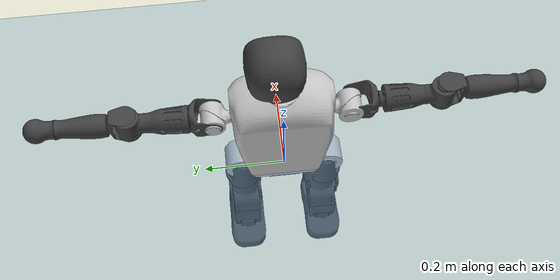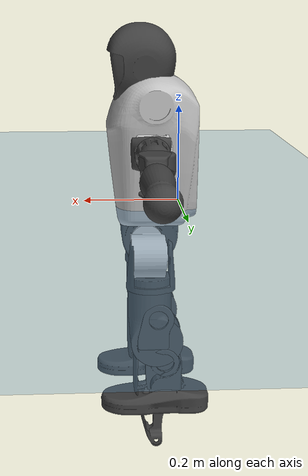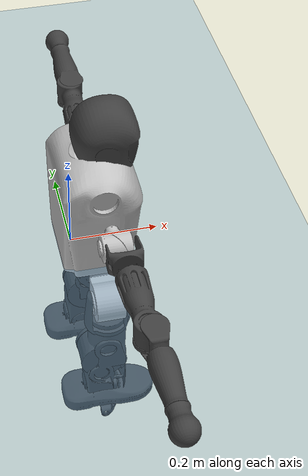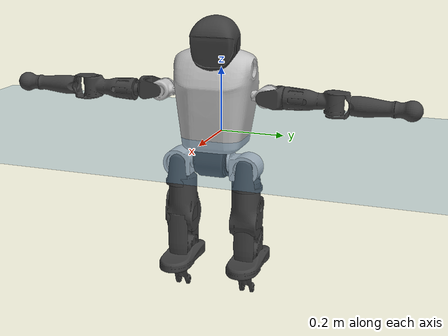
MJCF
<mujoco model="T1">
  <compiler angle="radian" assetdir="assets" balanceinertia="true" inertiafromgeom="false"/>

  <option timestep="0.005" density="1.2" viscosity="2e-05"/>

  <size nkey="1"/>

  <visual>
    <quality shadowsize="8192"/>
    <map shadowclip="0.5"/>
  </visual>

  <default>
    <default class="/">
      <joint armature="0.01" damping="0.01" frictionloss="0.1"/>
      <geom contype="0" conaffinity="0" group="1" solref="-1000 -80"/>
      <site size="0.01 0.005 0.005" group="5"/>
      <general forcelimited="true" biastype="affine" gainprm="25" biasprm="0 -25 -0.6"/>
      <default class="t1">
        <geom rgba="0.25 0.25 0.25 1"/>
        <default class="visual">
          <geom type="mesh" group="2"/>
        </default>
        <default class="collision">
          <geom group="3"/>
        </default>
        <default class="foot">
          <geom size="0.1115 0.05 0.015" type="box" condim="6" group="4" priority="1" solimp="0.015 1 0.015"/>
        </default>
        <default class="reward_collision_sphere">
          <geom group="5" rgba="1 0 0 1"/>
        </default>
      </default>
    </default>
  </default>

  <asset>
    <texture type="skybox" colorspace="auto" name="//unnamed_texture_0" builtin="gradient" rgb1="0.95 0.95 0.95" rgb2="0.95 0.95 0.95" width="100" height="600"/>
    <texture type="2d" colorspace="auto" name="texplane" builtin="checker" rgb1="0.345 0.575 0.748" rgb2="0.345 0.575 0.748" markrgb="1 1 1" width="512" height="512"/>
    <material name="MatPlane" class="/" texture="texplane" texuniform="true" texrepeat="2 2" specular="0.9"/>
    <mesh name="Trunk" class="/" file="Trunk.stl"/>
    <mesh name="H1" class="/" file="H1.stl"/>
    <mesh name="H2" class="/" file="H2.stl"/>
    <mesh name="AL1" class="/" file="AL1.stl"/>
    <mesh name="AL2" class="/" file="AL2.stl"/>
    <mesh name="AL3" class="/" file="AL3.stl"/>
    <mesh name="left_hand_link" class="/" file="left_hand_link.stl"/>
    <mesh name="AR1" class="/" file="AR1.stl"/>
    <mesh name="AR2" class="/" file="AR2.stl"/>
    <mesh name="AR3" class="/" file="AR3.stl"/>
    <mesh name="right_hand_link" class="/" file="right_hand_link.stl"/>
    <mesh name="Waist" class="/" file="Waist.stl"/>
    <mesh name="Hip_Pitch_Left" class="/" file="Hip_Pitch_Left.stl"/>
    <mesh name="Hip_Roll_Left" class="/" file="Hip_Roll_Left.stl"/>
    <mesh name="Hip_Yaw_Left" class="/" file="Hip_Yaw_Left.stl"/>
    <mesh name="Shank_Left" class="/" file="Shank_Left.stl"/>
    <mesh name="Ankle_Cross_Left" class="/" file="Ankle_Cross_Left.stl"/>
    <mesh name="left_foot_link" class="/" file="left_foot_link.stl"/>
    <mesh name="Hip_Pitch_Right" class="/" file="Hip_Pitch_Right.stl"/>
    <mesh name="Hip_Roll_Right" class="/" file="Hip_Roll_Right.stl"/>
    <mesh name="Hip_Yaw_Right" class="/" file="Hip_Yaw_Right.stl"/>
    <mesh name="Shank_Right" class="/" file="Shank_Right.stl"/>
    <mesh name="Ankle_Cross_Right" class="/" file="Ankle_Cross_Right.stl"/>
    <mesh name="right_foot_link" class="/" file="right_foot_link.stl"/>
  </asset>

  <worldbody>
    <geom name="floor" class="/" size="100 100 0.125" type="plane" group="0" material="MatPlane"/>
    <light name="toplight_shadow" class="/" pos="0 0 5" dir="0.0990148 0.0990148 -0.990148" type="directional" ambient="0.04 0.04 0.04" diffuse="0.55 0.55 0.55" specular="0.12 0.12 0.12"/>
    <light name="toplight_fill" class="/" pos="0 0 5" dir="0.0990148 0.0990148 -0.990148" type="directional" castshadow="false" ambient="0.04 0.04 0.04" diffuse="0.3 0.3 0.3" specular="0.08 0.08 0.08"/>
    <body name="trunk" childclass="t1" pos="-0.0020353 -0.000215812 -0.00617217" quat="1 0.000228721 -6.26506e-05 -0.000871582">
      <inertial pos="0.0601599 -0.00352632 0.0658037" quat="0.99991 0.0120225 -0.00588842 0.00116151" mass="10.2884" diaginertia="0.146464 0.122281 0.00578262"/>
      <joint name="//unnamed_joint_0" type="free" armature="0" damping="0" frictionloss="0"/>
      <geom name="//unnamed_geom_1" class="visual" rgba="0.76 0.76 0.76 1" mesh="Trunk"/>
      <geom name="//unnamed_geom_2" class="collision" size="0.0700105 0.0933473 0.140021" pos="0.0651862 0 0.0747546" type="box"/>
      <geom name="//unnamed_geom_3" class="reward_collision_sphere" size="0.107349" pos="0.0651862 0 0.0622955"/>
      <geom name="//unnamed_geom_4" class="reward_collision_sphere" size="0.0140021" pos="0.0651862 0.0927373 0"/>
      <geom name="//unnamed_geom_5" class="reward_collision_sphere" size="0.0140021" pos="0.0651862 -0.0927373 0"/>
      <geom name="//unnamed_geom_6" class="reward_collision_sphere" size="0.0140021" pos="0.0651862 0.11674 0.112132"/>
      <geom name="//unnamed_geom_7" class="reward_collision_sphere" size="0.0140021" pos="0.0651862 -0.11674 0.112132"/>
      <site name="imu" pos="-0.0481733 0.0378348 -0.0079248" size="0.00933473"/>
      <camera name="track" pos="0 -2.18205 0" quat="0.707107 0.707107 0 0" mode="trackcom"/>
      <camera name="ego_camera" pos="0.132545 0 0.261641" quat="-0.5 -0.5 0.5 0.5"/>
      <body name="H1" pos="0.0688585 0.00331675 0.148411" quat="0.999999 0.000603076 0.000420376 0.00142014">
        <inertial pos="-0.00214421 -0.00287741 0.0349067" quat="0.764197 -0.0133992 0.00247609 0.644839" mass="0.345742" diaginertia="0.000335499 0.000340492 1.26496e-05"/>
        <joint name="AAHead_yaw" pos="0 0 0" axis="0.00637452 -0.000129036 0.99998" range="-1.59995 1.49292" armature="0.0093969" damping="0.00550314" frictionloss="0.09288"/>
        <geom name="//unnamed_geom_8" class="visual" mesh="H1"/>
        <body name="H2" pos="0.000284039 0.00817569 0.038048" quat="1 0.000787137 -0.000194832 -0.000163138">
          <inertial pos="-0.00161932 -0.00736428 0.0569855" quat="0.988936 0.104299 -0.073866 -0.075303" mass="0.463522" diaginertia="0.0031146 0.00306778 0.000162708"/>
          <joint name="Head_pitch" pos="0 0 0" axis="-0.000824906 -0.999999 -0.00145513" range="-1.21542 0.260606" armature="0.0128181" damping="0.0188195" frictionloss="0.0904856"/>
          <geom name="//unnamed_geom_9" class="visual" mesh="H2"/>
          <geom name="//unnamed_geom_10" class="collision" size="0.0746778" pos="0.0108644 0 0.068525"/>
          <geom name="//unnamed_geom_11" class="reward_collision_sphere" size="0.0840126" pos="0.0217287 0 0.0622955"/>
        </body>
      </body>
      <body name="AL1" pos="0.068728 0.120164 0.139941" quat="1 -0.0001627 -0.000280681 -0.000695276">
        <inertial pos="-0.00280543 0.0466408 -0.00836378" quat="0.498656 0.497032 -0.515008 0.488947" mass="0.435943" diaginertia="0.00207542 0.00202085 2.7368e-05"/>
        <joint name="Left_Shoulder_Pitch" pos="0 0 0" axis="-0.00160642 0.999996 0.00212031" stiffness="0.0343827" range="-3.15173 1.30942" armature="0.00984474" damping="0.0078913" frictionloss="0.0930543"/>
        <geom name="//unnamed_geom_12" class="visual" rgba="0.76 0.76 0.76 1" mesh="AL1"/>
        <body name="AL2" pos="0.00388072 0.043468 0.000330106" quat="0.999988 -0.00371934 -0.00174501 -0.00256616">
          <inertial pos="0.00239102 0.0395475 0.00583322" quat="0.487703 0.50782 -0.49385 0.510271" mass="0.101529" diaginertia="0.000529158 0.000441166 1.46226e-05"/>
          <joint name="Left_Shoulder_Roll" pos="0 0 0" axis="-0.998516 -0.0541917 -0.00534303" stiffness="0.0131431" range="-1.49386 1.77545" armature="0.00813014" damping="0.0496847" frictionloss="0.098075"/>
          <geom name="//unnamed_geom_13" class="visual" mesh="AL2"/>
          <body name="AL3" pos="-0.000935051 0.0582463 0.000362717" quat="0.999987 -0.00279059 0.00228284 -0.00364608">
            <inertial pos="0.00200564 0.0951791 0.000580322" quat="0.714305 0.699149 -0.0274326 -0.0143718" mass="0.739535" diaginertia="0.0170074 0.0181712 5.38142e-05"/>
            <joint name="Left_Elbow_Pitch" pos="0 0 0" axis="0.000534715 -0.999941 0.0108929" range="-2.22941 2.29727" armature="0.0101673" damping="0.00439816" frictionloss="0.101034"/>
            <geom name="//unnamed_geom_14" class="visual" mesh="AL3"/>
            <geom name="//unnamed_geom_15" class="collision" size="0.0280042 0.0700105" pos="0 0.0545514 0" quat="0.707105 0.707108 0 0" type="cylinder"/>
            <geom name="//unnamed_geom_16" class="reward_collision_sphere" size="0.033605"/>
            <body name="left_hand_link" pos="0.00503467 0.151258 -0.00410511" quat="0.999991 0.00326334 0.00155865 -0.00221771">
              <inertial pos="-0.00131372 0.12155 0.00832817" quat="0.682572 0.730646 0.0122197 0.0101558" mass="0.301271" diaginertia="0.0134444 0.0145105 2.34452e-05"/>
              <joint name="Left_Elbow_Yaw" pos="0 0 0" axis="-0.0343027 0.00520288 0.999398" range="-2.43165 -0.1222" armature="0.00871539" damping="0.0261783" frictionloss="0.0484266"/>
              <geom name="//unnamed_geom_17" class="visual" mesh="left_hand_link"/>
              <geom name="//unnamed_geom_18" class="collision" size="0.0280042 0.0816789" pos="0 0.141834 0" quat="0.707105 0.707108 0 0" type="cylinder"/>
              <geom name="//unnamed_geom_19" class="reward_collision_sphere" size="0.0466737"/>
              <geom name="//unnamed_geom_20" class="reward_collision_sphere" size="0.0326716" pos="0 0.120013 0"/>
              <geom name="//unnamed_geom_21" class="reward_collision_sphere" size="0.0326716" pos="0 0.234571 0"/>
            </body>
          </body>
        </body>
      </body>
      <body name="AR1" pos="0.0695555 -0.120929 0.139253" quat="1 -0.000327316 0.000193135 0.000512095">
        <inertial pos="0.00123543 -0.0497679 0.00189914" quat="0.510387 0.490921 -0.498981 0.49952" mass="0.408194" diaginertia="0.00207122 0.00194172 2.61687e-05"/>
        <joint name="Right_Shoulder_Pitch" pos="0 0 0" axis="0.0144628 -0.999891 0.00311761" range="-1.39567 3.27644" armature="0.00842888" damping="0" frictionloss="0.0922264"/>
        <geom name="//unnamed_geom_22" class="visual" rgba="0.76 0.76 0.76 1" mesh="AR1"/>
        <body name="AR2" pos="0.00835261 -0.057033 0.00320785" quat="0.999999 1.03544e-06 0.0013229 -9.06988e-05">
          <inertial pos="0.0075801 -0.0428597 0.005276" quat="0.499328 0.484371 -0.521183 0.494393" mass="0.130372" diaginertia="0.000656322 0.000590352 1.62777e-05"/>
          <joint name="Right_Shoulder_Roll" pos="0 0 0" axis="-0.999978 0.00210024 -0.00636116" range="-1.79526 1.74084" armature="0.010147" damping="0.00623006" frictionloss="0.130945"/>
          <geom name="//unnamed_geom_23" class="visual" mesh="AR2"/>
          <body name="AR3" pos="0.0028853 -0.0754971 -0.00762451" quat="1 -0.000835614 -6.45773e-05 -2.6874e-05">
            <inertial pos="-0.000705492 -0.0930453 0.000849625" quat="0.710343 0.702008 0.0329179 -0.0389149" mass="0.862847" diaginertia="0.0202815 0.0188118 5.82233e-05"/>
            <joint name="Right_Elbow_Pitch" pos="0 0 0" axis="0.00150064 0.999999 -0.000602122" range="-2.28229 2.24124" armature="0.00878038" damping="0" frictionloss="0.0524636"/>
            <geom name="//unnamed_geom_24" class="visual" mesh="AR3"/>
            <geom name="//unnamed_geom_25" class="collision" size="0.0280042 0.0700105" pos="0 -0.0545514 0" quat="0.707105 0.707108 0 0" type="cylinder"/>
            <geom name="//unnamed_geom_26" class="reward_collision_sphere" size="0.033605"/>
            <body name="right_hand_link" pos="0.00752289 -0.16122 -0.000562736" quat="0.999999 0.000296232 -0.00138512 0.000348653">
              <inertial pos="0.00141204 -0.119368 -0.00790224" quat="0.695027 0.71807 -0.0214702 0.0292007" mass="0.301583" diaginertia="0.0145213 0.014313 2.25561e-05"/>
              <joint name="Right_Elbow_Yaw" pos="0 0 0" axis="0.0102012 -0.0059428 0.99993" range="0.122367 2.45345" armature="0.00446329" damping="0.0211198" frictionloss="0.0903219"/>
              <geom name="//unnamed_geom_27" class="visual" mesh="right_hand_link"/>
              <geom name="//unnamed_geom_28" class="collision" size="0.0280042 0.0816789" pos="0 -0.141834 0" quat="0.707105 0.707108 0 0" type="cylinder"/>
              <geom name="//unnamed_geom_29" class="reward_collision_sphere" size="0.0466737"/>
              <geom name="//unnamed_geom_30" class="reward_collision_sphere" size="0.0326716" pos="0 -0.120013 0"/>
              <geom name="//unnamed_geom_31" class="reward_collision_sphere" size="0.0326716" pos="0 -0.234571 0"/>
            </body>
          </body>
        </body>
      </body>
      <body name="Waist" pos="0.0643191 -0.00104161 -0.0659007" quat="1 0.000203386 -0.000344088 0.000229774">
        <inertial pos="-0.00602314 -7.41175e-05 0.0047996" quat="0.984123 0.0042469 -0.177332 -0.00616193" mass="2.13731" diaginertia="0.00877379 0.00978365 0.000487423"/>
        <joint name="Waist" pos="0 0 0" axis="0.00140222 -0.000122276 0.999999" range="-1.76623 1.53398" armature="0.0122848" damping="0.00713596" frictionloss="0.0846663"/>
        <geom name="//unnamed_geom_32" class="visual" mesh="Waist"/>
        <body name="Hip_Pitch_Left" pos="0.00813705 0.108133 -0.0016577" quat="0.99999 0.00429474 -0.000963788 -0.00029099">
          <inertial pos="0.00448483 -0.0174236 -0.0121175" quat="0.975157 0.220937 0.0155342 -0.00391885" mass="0.864681" diaginertia="0.00293605 0.0020714 0.000125375"/>
          <joint name="Left_Hip_Pitch" pos="0 0 0" axis="0.00444243 0.99998 0.00453353" range="-1.81882 1.48289" armature="0.00905467" damping="0" frictionloss="0.094319"/>
          <geom name="//unnamed_geom_33" class="visual" rgba="0.76 0.76 0.76 1" mesh="Hip_Pitch_Left"/>
          <body name="Hip_Roll_Left" pos="-0.00345007 0.000686582 -0.0108833" quat="0.999993 -0.00323524 -0.00157899 -0.00102046">
            <inertial pos="0.00161583 -0.00147867 -0.0334525" quat="0.704519 -0.00078989 -0.0119774 0.709584" mass="0.319207" diaginertia="0.00263058 0.00263092 5.38925e-05"/>
            <joint name="Left_Hip_Roll" pos="0 0 0" axis="-0.999996 -0.00257717 0.00132198" stiffness="0.0174033" range="-1.56447 0.20645" armature="0.00923495" damping="0" frictionloss="0.0643734"/>
            <geom name="//unnamed_geom_34" class="visual" mesh="Hip_Roll_Left"/>
            <geom name="//unnamed_geom_35" class="reward_collision_sphere" size="0.051341"/>
            <body name="Hip_Yaw_Left" pos="-0.00071288 -0.0031228 -0.0499007" quat="0.999998 0.00109292 0.000162957 -0.00177425">
              <inertial pos="-0.0069636 -0.000505057 -0.055669" quat="0.684044 -0.016313 0.00844862 0.729209" mass="1.82365" diaginertia="0.0398302 0.0440667 0.000234884"/>
              <joint name="Left_Hip_Yaw" pos="0 0 0" axis="-0.0220857 -0.0311053 -0.999272" range="-0.989586 1.04062" armature="0.00930721" damping="0" frictionloss="0.0918818"/>
              <geom name="//unnamed_geom_36" class="visual" mesh="Hip_Yaw_Left"/>
              <geom name="//unnamed_geom_37" class="collision" size="0.0466737 0.0746778" type="cylinder"/>
              <body name="Shank_Left" pos="-0.0158526 0.00161206 -0.0832391" quat="0.999999 -0.000935001 4.40808e-05 0.00126806">
                <inertial pos="-0.00794297 -0.000388348 -0.0786477" quat="0.996459 -0.0264005 -0.0309065 0.073598" mass="1.36004" diaginertia="0.053776 0.0497147 0.000174594"/>
                <joint name="Left_Knee_Pitch" pos="0 0 0" axis="-0.0130751 0.999846 -0.0117115" range="-0.0274251 2.34601" armature="0.00910747" damping="0" frictionloss="0.0600846"/>
                <geom name="//unnamed_geom_38" class="visual" mesh="Shank_Left"/>
                <geom name="//unnamed_geom_39" class="collision" size="0.0466737 0.0700105" pos="0 0 -0.0747546" type="cylinder"/>
                <geom name="//unnamed_geom_40" class="reward_collision_sphere" size="0.0606758"/>
                <body name="Ankle_Cross_Left" pos="0.00174531 0.000805583 -0.176237" quat="0.999998 -0.000882194 0.00155771 -0.000887934">
                  <inertial pos="-0.00546759 -0.00282768 0.00489728" quat="0.444652 0.547203 0.554075 0.442553" mass="0.0544411" diaginertia="3.59327e-05 3.78808e-05 1.00282e-06"/>
                  <joint name="Left_Ankle_Pitch" pos="0 0 0" axis="-0.0161266 0.999867 -0.00223491" range="-0.669065 0.275562" armature="0.0108855" damping="0.00243131" frictionloss="0.0583506"/>
                  <geom name="//unnamed_geom_41" class="visual" mesh="Ankle_Cross_Left"/>
                  <body name="left_foot_link" pos="-0.00785594 0.00105239 0.00115331" quat="1 0.000287926 2.7226e-05 0.000393976">
                    <inertial pos="0.000307581 0.00851412 -0.00495617" quat="0.000881904 0.615614 0.00698656 0.788016" mass="0.575789" diaginertia="0.00384377 0.00370756 0.000204258"/>
                    <joint name="Left_Ankle_Roll" pos="0 0 0" axis="-0.999997 0.00165471 -0.00174931" range="-0.357423 0.472435" armature="0.00909031" damping="0.00675953" frictionloss="0.101291"/>
                    <geom name="//unnamed_geom_42" class="visual" mesh="left_foot_link"/>
                    <geom name="left_foot" class="foot" size="0.0983733 0.0374128 0.012712" pos="0.0108644 0 -0.00934432"/>
                    <geom name="//unnamed_geom_44" class="reward_collision_sphere" size="0.0485406" pos="0.0108644 0 -0.00934432"/>
                    <geom name="//unnamed_geom_45" class="reward_collision_sphere" size="0.0280042" pos="0.103212 -0.0250936 -0.00934432"/>
                    <geom name="//unnamed_geom_46" class="reward_collision_sphere" size="0.0280042" pos="-0.0760506 -0.0250936 -0.00934432"/>
                    <site name="left_foot" class="foot" pos="0.0108644 0 -0.00934432" size="0.00933473"/>
                  </body>
                </body>
              </body>
            </body>
          </body>
        </body>
        <body name="Hip_Pitch_Right" pos="0.000638195 -0.114067 -0.00239461" quat="0.999999 0.000946136 0.0012583 0.000573585">
          <inertial pos="0.0016198 0.00784174 -0.0196429" quat="0.971779 -0.233564 0.0112182 0.0311106" mass="0.827772" diaginertia="0.00273776 0.00226679 0.000108203"/>
          <joint name="Right_Hip_Pitch" pos="0 0 0" axis="-0.0188176 -0.999477 0.0262882" stiffness="0.011687" range="-1.59721 1.79527" armature="0.00645721" damping="0.00412853" frictionloss="0.0775331"/>
          <geom name="//unnamed_geom_47" class="visual" rgba="0.76 0.76 0.76 1" mesh="Hip_Pitch_Right"/>
          <body name="Hip_Roll_Right" pos="-0.00240308 0.00291058 -0.0142718" quat="0.999988 -0.00156255 0.00378668 0.00281108">
            <inertial pos="-0.00836275 -0.0009419 -0.0285953" quat="0.72102 -0.0127785 -0.0288936 0.692194" mass="0.3339" diaginertia="0.00299696 0.00251437 5.1492e-05"/>
            <joint name="Right_Hip_Roll" pos="0 0 0" axis="-0.999889 -0.0148907 -0.000939235" range="-0.200267 1.44483" armature="0.0102701" damping="0" frictionloss="0.0920518"/>
            <geom name="//unnamed_geom_48" class="visual" mesh="Hip_Roll_Right"/>
            <geom name="//unnamed_geom_49" class="reward_collision_sphere" size="0.051341"/>
            <body name="Hip_Yaw_Right" pos="0.000722791 0.00585463 -0.0514549" quat="0.999992 0.00233839 -0.00307886 0.00082627">
              <inertial pos="-0.0116109 -0.00103478 -0.0564257" quat="0.724755 -0.0266257 -0.0164098 0.688296" mass="1.56978" diaginertia="0.0317019 0.0308901 0.000212336"/>
              <joint name="Right_Hip_Yaw" pos="0 0 0" axis="0.00370963 0.000303528 -0.999993" range="-1.04547 1.19617" armature="0.00896687" damping="0.00322148" frictionloss="0.131035"/>
              <geom name="//unnamed_geom_50" class="visual" mesh="Hip_Yaw_Right"/>
              <geom name="//unnamed_geom_51" class="collision" size="0.0466737 0.0746778" type="cylinder"/>
              <body name="Shank_Right" pos="-0.00658258 -0.00490405 -0.081783" quat="0.999992 0.00151458 -0.00174957 -0.00319419">
                <inertial pos="-0.0139953 -0.00331241 -0.0780114" quat="0.999097 0.00208202 -0.0189837 -0.0379432" mass="1.25774" diaginertia="0.0534896 0.0580398 0.000194716"/>
                <joint name="Right_Knee_Pitch" pos="0 0 0" axis="0.000199473 -0.99997 0.00768856" range="-2.3374 -0.0271015" armature="0.0104083" damping="0" frictionloss="0.084006"/>
                <geom name="//unnamed_geom_52" class="visual" mesh="Shank_Right"/>
                <geom name="//unnamed_geom_53" class="collision" size="0.0466737 0.0700105" pos="0 0 -0.0747546" type="cylinder"/>
                <geom name="//unnamed_geom_54" class="reward_collision_sphere" size="0.0606758"/>
                <body name="Ankle_Cross_Right" pos="0.00240386 -0.00106858 -0.168947" quat="0.999993 -0.000783493 0.000619439 -0.00363108">
                  <inertial pos="-0.00413671 0.00143713 -0.00600609" quat="0.436954 0.548776 0.553 0.449563" mass="0.0692642" diaginertia="4.6849e-05 4.19591e-05 1.1099e-06"/>
                  <joint name="Right_Ankle_Pitch" pos="0 0 0" axis="0.0296521 -0.998737 -0.0405551" range="-0.367261 0.973451" armature="0.0064306" damping="0.027537" frictionloss="0.139108"/>
                  <geom name="//unnamed_geom_55" class="visual" mesh="Ankle_Cross_Right"/>
                  <body name="right_foot_link" pos="-0.00505023 -0.000841151 -0.00973828" quat="0.999999 0.000998114 -0.00124712 0.000151784">
                    <inertial pos="-0.000252111 0.000601376 0.00153641" quat="0.00327208 0.616985 0.00401728 0.786958" mass="0.499268" diaginertia="0.00424224 0.00369261 0.000207024"/>
                    <joint name="Right_Ankle_Roll" pos="0 0 0" axis="-0.99952 -0.00477287 0.0306065" range="-0.640085 0.388575" armature="0.0122494" damping="0.00982771" frictionloss="0.102095"/>
                    <geom name="//unnamed_geom_56" class="visual" mesh="right_foot_link"/>
                    <geom name="right_foot" class="foot" size="0.138864 0.033776 0.011989" pos="0.0108644 0 -0.00934432"/>
                    <geom name="//unnamed_geom_58" class="reward_collision_sphere" size="0.0373389"/>
                    <geom name="//unnamed_geom_59" class="reward_collision_sphere" size="0.0280042" pos="0.0108644 0 -0.00934432"/>
                    <geom name="//unnamed_geom_60" class="reward_collision_sphere" size="0.0280042" pos="0.103212 0.0250936 -0.00934432"/>
                    <geom name="//unnamed_geom_61" class="reward_collision_sphere" size="0.0280042" pos="-0.0760506 0.0250936 -0.00934432"/>
                    <site name="right_foot" class="foot" pos="0.0108644 0 -0.00934432" size="0.00933473"/>
                  </body>
                </body>
              </body>
            </body>
          </body>
        </body>
      </body>
    </body>
  </worldbody>

  <contact>
    <pair class="/" geom1="floor" geom2="left_foot" name="//unnamed_contact_0"/>
    <pair class="/" geom1="floor" geom2="right_foot" name="//unnamed_contact_1"/>
  </contact>

  <actuator>
    <general name="AAHead_yaw" class="/" joint="AAHead_yaw" forcerange="-7.15293 7.15293" gainprm="19.872" biasprm="0 -19.872 -0.546868"/>
    <general name="Head_pitch" class="/" joint="Head_pitch" forcerange="-6.93686 6.93686" gainprm="19.872" biasprm="0 -19.872 -0.546868"/>
    <general name="Left_Shoulder_Pitch" class="/" joint="Left_Shoulder_Pitch" forcerange="-15.4511 15.4511" gainprm="19.872" biasprm="0 -19.872 -0.546868"/>
    <general name="Left_Shoulder_Roll" class="/" joint="Left_Shoulder_Roll" forcerange="-15.9118 15.9118" gainprm="19.872" biasprm="0 -19.872 -0.546868"/>
    <general name="Left_Elbow_Pitch" class="/" joint="Left_Elbow_Pitch" forcerange="-12.5309 12.5309" gainprm="19.872" biasprm="0 -19.872 -0.546868"/>
    <general name="Left_Elbow_Yaw" class="/" joint="Left_Elbow_Yaw" forcerange="-16.1909 16.1909" gainprm="19.872" biasprm="0 -19.872 -0.546868"/>
    <general name="Right_Shoulder_Pitch" class="/" joint="Right_Shoulder_Pitch" forcerange="-17.1419 17.1419" gainprm="19.872" biasprm="0 -19.872 -0.546868"/>
    <general name="Right_Shoulder_Roll" class="/" joint="Right_Shoulder_Roll" forcerange="-16.6144 16.6144" gainprm="19.872" biasprm="0 -19.872 -0.546868"/>
    <general name="Right_Elbow_Pitch" class="/" joint="Right_Elbow_Pitch" forcerange="-17.0494 17.0494" gainprm="19.872" biasprm="0 -19.872 -0.546868"/>
    <general name="Right_Elbow_Yaw" class="/" joint="Right_Elbow_Yaw" forcerange="-12.2542 12.2542" gainprm="19.872" biasprm="0 -19.872 -0.546868"/>
    <general name="Waist" class="/" joint="Waist" forcerange="-25.9104 25.9104" gainprm="19.872" biasprm="0 -19.872 -0.546868"/>
    <general name="Left_Hip_Pitch" class="/" joint="Left_Hip_Pitch" forcerange="-57.3983 57.3983" gainprm="19.872" biasprm="0 -19.872 -0.546868"/>
    <general name="Left_Hip_Roll" class="/" joint="Left_Hip_Roll" forcerange="-28.9037 28.9037" gainprm="19.872" biasprm="0 -19.872 -0.546868"/>
    <general name="Left_Hip_Yaw" class="/" joint="Left_Hip_Yaw" forcerange="-27.3946 27.3946" gainprm="19.872" biasprm="0 -19.872 -0.546868"/>
    <general name="Left_Knee_Pitch" class="/" joint="Left_Knee_Pitch" forcerange="-40.3864 40.3864" gainprm="19.872" biasprm="0 -19.872 -0.546868"/>
    <general name="Left_Ankle_Pitch" class="/" joint="Left_Ankle_Pitch" forcerange="-19.4832 19.4832" gainprm="19.872" biasprm="0 -19.872 -0.546868"/>
    <general name="Left_Ankle_Roll" class="/" joint="Left_Ankle_Roll" forcerange="-13.8562 13.8562" gainprm="19.872" biasprm="0 -19.872 -0.546868"/>
    <general name="Right_Hip_Pitch" class="/" joint="Right_Hip_Pitch" forcerange="-28.2819 28.2819" gainprm="19.872" biasprm="0 -19.872 -0.546868"/>
    <general name="Right_Hip_Roll" class="/" joint="Right_Hip_Roll" forcerange="-28.5429 28.5429" gainprm="19.872" biasprm="0 -19.872 -0.546868"/>
    <general name="Right_Hip_Yaw" class="/" joint="Right_Hip_Yaw" forcerange="-27.4496 27.4496" gainprm="19.872" biasprm="0 -19.872 -0.546868"/>
    <general name="Right_Knee_Pitch" class="/" joint="Right_Knee_Pitch" forcerange="-46.9886 46.9886" gainprm="19.872" biasprm="0 -19.872 -0.546868"/>
    <general name="Right_Ankle_Pitch" class="/" joint="Right_Ankle_Pitch" forcerange="-20.2467 20.2467" gainprm="19.872" biasprm="0 -19.872 -0.546868"/>
    <general name="Right_Ankle_Roll" class="/" joint="Right_Ankle_Roll" forcerange="-18.6055 18.6055" gainprm="19.872" biasprm="0 -19.872 -0.546868"/>
  </actuator>

  <sensor>
    <gyro site="imu" name="imu_angular_velocity"/>
    <velocimeter site="imu" name="imu_linear_velocity"/>
    <framelinvel objtype="site" objname="left_foot" name="left_foot_global_linear_velocity"/>
    <framelinvel objtype="site" objname="right_foot" name="right_foot_global_linear_velocity"/>
  </sensor>

  <keyframe>
    <key name="home" qpos="0 0 0.6385 1 0 0 0 0 0 0 1.4 0 -0.4 0 -1.4 0 0.4 0 -0.4 0 0 0.8 -0.4 0 0.4 0 0 -0.8 0.4 0"/>
  </keyframe>
</mujoco>
